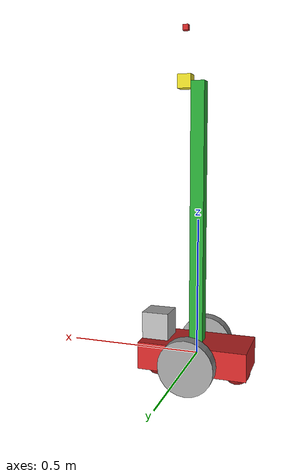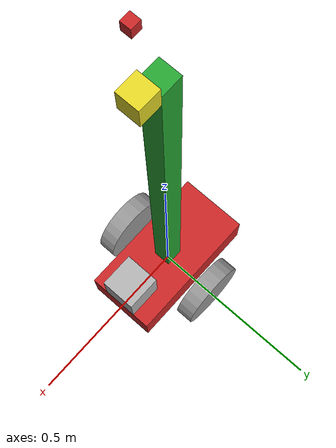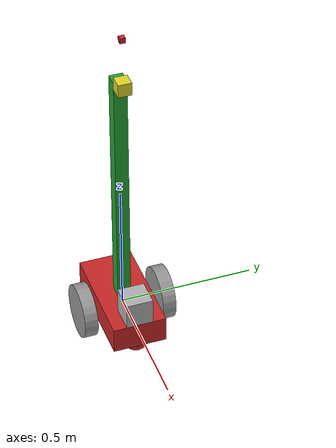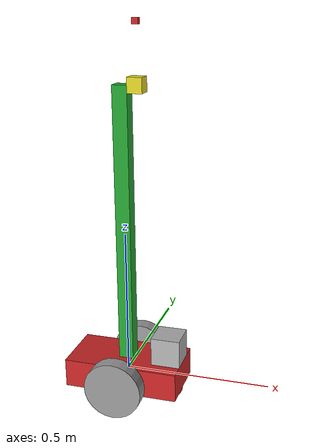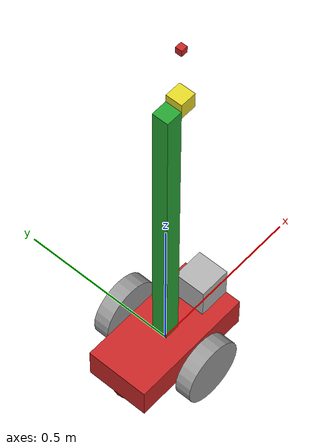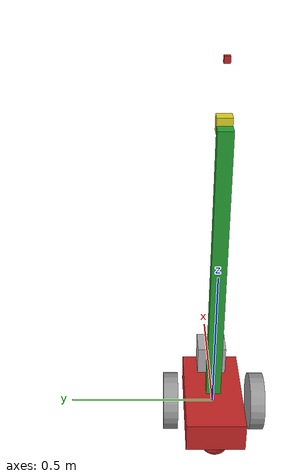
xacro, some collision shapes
<?xml version='1.0'?>

<robot name="my_robot" xmlns:xacro="http://www.ros.org/wiki/xacro">

  <xacro:include filename="$(find my_robot)/urdf/my_robot.gazebo" />
  <link name="robot_footprint"></link>

  <joint name="robot_footprint_joint" type="fixed">
    <origin xyz="0 0 0" rpy="0 0 0" />
    <parent link="robot_footprint"/>
    <child link="chassis" />

  </joint>

  <link name='chassis'>
    <pose>0 0 0.1 0 0 0</pose>

    <inertial>
      <mass value="15.0"/>
      <origin xyz="0.0 0 0" rpy=" 0 0 0"/>
      <inertia
          ixx="0.1" ixy="0" ixz="0"
          iyy="0.1" iyz="0"
          izz="0.1"
      />
    </inertial>

    <collision name='collision'>
      <origin xyz="0 0 0" rpy=" 0 0 0"/>
      <geometry>
        <box size=".4 .2 .1"/>
      </geometry>
    </collision>

    <visual name='chassis_visual'>
      <origin xyz="0 0 0" rpy=" 0 0 0"/>
      <geometry>
        <box size=".4 .2 .1"/>
      </geometry>
    </visual>

    <collision name='back_caster_collision'>
      <origin xyz="-0.15 0 -0.05" rpy=" 0 0 0"/>
      <geometry>
        <sphere radius="0.0499"/>
      </geometry>
    </collision>

    <visual name='back_caster_visual'>
      <origin xyz="-0.15 0 -0.05" rpy=" 0 0 0"/>
      <geometry>
        <sphere radius="0.05"/>
      </geometry>
    </visual>

    <collision name='front_caster_collision'>
      <origin xyz="0.15 0 -0.05" rpy=" 0 0 0"/>
      <geometry>
        <sphere radius="0.0499"/>
      </geometry>
    </collision>

    <visual name='front_caster_visual'>
      <origin xyz="0.15 0 -0.05" rpy=" 0 0 0"/>
      <geometry>
        <sphere radius="0.05"/>
      </geometry>
    </visual>

  </link>

  <!-- high_platform for camera -->
  <link name='high_platform'>
    <collision name='high_platform_collision'>
      <origin xyz="0 0 0" rpy="0 0 0"/>
      <geometry>
	<box size=".05 .05 1."/>
      </geometry>
    </collision>

    <visual name='high_platform_visual'>
      <origin xyz="0 0 0" rpy="0 0 0"/>
      <geometry>
	<box size=".05 .05 1."/>
      </geometry>
    </visual>

    <inertial>
      <mass value="0.01"/>
      <origin xyz="0 0 0" rpy="0 0 0"/>
      <inertia
          ixx="0.02" ixy="0" ixz="0"
          iyy="0.02" iyz="0"
          izz="0.02"
      />
    </inertial>
  </link>

 <joint name="base_to_high_platform" type="fixed">
     <parent link="chassis"/>
     <child link="high_platform"/>
     <origin xyz="0 0 0.5" />
 </joint>

  <!-- Left wheel -->
  <link name='left_wheel'>
    <collision name='left_wheel_collision'>
      <origin xyz="0 0 0" rpy="0 1.5707 1.5707"/>
      <geometry>
	<cylinder radius="0.1" length="0.05"/>
      </geometry>
    </collision>

    <visual name='left_wheel_visual'>
      <origin xyz="0 0 0" rpy="0 1.5707 1.5707"/>
      <geometry>
	<cylinder radius="0.1" length="0.05"/>
      </geometry>
    </visual>

    <inertial>
      <mass value="5"/>
      <origin xyz="0 0 0" rpy="0 1.5707 1.5707"/>
      <inertia
          ixx="0.1" ixy="0" ixz="0"
          iyy="0.1" iyz="0"
          izz="0.1"
      />
    </inertial>
  </link>

  <joint type="continuous" name="left_wheel_hinge">
    <origin xyz="0 0.15 0" rpy="0 0 0"/>
    <child link="left_wheel"/>
    <parent link="chassis"/>
    <axis xyz="0 1 0" rpy="0 0 0"/>
    <limit effort="10000" velocity="1000"/>
    <dynamics damping="1.0" friction="1.0"/>
  </joint>

  <!-- Right wheel -->
  <link name='right_wheel'>
    <collision name='right_wheel_collision'>
      <origin xyz="0 0 0" rpy="0 1.5707 1.5707"/>
      <geometry>
	<cylinder radius="0.1" length="0.05"/>
      </geometry>
    </collision>

    <visual name='right_wheel_visual'>
      <origin xyz="0 0 0" rpy="0 1.5707 1.5707"/>
      <geometry>
	<cylinder radius="0.1" length="0.05"/>
      </geometry>
    </visual>

    <inertial>
      <mass value="5"/>
      <origin xyz="0 0 0" rpy="0 1.5707 1.5707"/>
      <inertia
          ixx="0.1" ixy="0" ixz="0"
          iyy="0.1" iyz="0"
          izz="0.1"
      />
    </inertial>
  </link>

  <joint type="continuous" name="right_wheel_hinge">
    <origin xyz="0 -0.15 0" rpy="0 0 0"/>
    <child link="right_wheel"/>
    <parent link="chassis"/>
    <axis xyz="0 1 0" rpy="0 0 0"/>
    <limit effort="10000" velocity="1000"/>
    <dynamics damping="1.0" friction="1.0"/>
  </joint>

  <!-- camera -->
  <link name='camera'>
    <collision name='camera_collision'>
      <origin xyz="0 0 0" rpy="0 0 0"/>
      <geometry>
	<box size="0.05 0.05 0.05"/>
      </geometry>
    </collision>

    <visual name='camera_visual'>
      <origin xyz="0 0 0" rpy="0 0 0"/>
      <geometry>
	<box size="0.05 0.05 0.05"/>
      </geometry>
    </visual>

    <inertial>
      <mass value="0.01"/>
      <origin xyz="0 0 0" rpy="0 0 0"/>
      <inertia
          ixx="1e-6" ixy="0" ixz="0"
          iyy="1e-6" iyz="0"
          izz="1e-6"
      />
    </inertial>
  </link>

  <joint name="camera_joint" type="fixed">
    <origin xyz="0.05 0 0.5" rpy="0 0 0"/>
    <child link="camera"/>
    <parent link="high_platform"/>
    <axis xyz="0 1 0"/>
  </joint>

    <!-- RGBD camera -->
  <link name="camera_link_optical">
  </link>

  <joint name="camera_optical_joint" type="fixed">
    <origin xyz="0 0 0" rpy="-1.5707 0 -1.5707"/>
    <parent link="camera"/>
    <child link="camera_link_optical"/>
  </joint>

  <!-- hokuyo Lidar -->
  <link name='hokuyo'>
    <collision name="hokuyo_collision">
      <origin xyz="0 0 0" rpy="0 0 0"/>
      <geometry>
        <box size="0.1 0.1 0.1"/>
      </geometry>
    </collision>

    <visual name='hokuyo_visual'>
      <origin xyz="0 0 0" rpy="0 0 0"/>
      <geometry>
        <mesh filename="package://my_robot/meshes/hokuyo.dae"/>
      </geometry>
    </visual>

    <inertial>
      <mass value="1e-5"/>
      <origin xyz="0 0 0" rpy="0 0 0"/>
      <inertia
          ixx="1e-6" ixy="0" ixz="0"
          iyy="1e-6" iyz="0"
          izz="1e-6"
      />
    </inertial>
  </link>

  <joint type="fixed" name='hokuyo_joint'>
    <origin xyz="0.15 0 0.1" rpy="0 0 0"/>
    <child link="hokuyo"/>
    <parent link="chassis"/>
    <axis xyz="0 1 0"/>
  </joint>

  <joint name="imu_sensor_joint" type="fixed">
    <axis xyz="1 0 0"/>
    <origin xyz="0 0 0.19"/>
    <parent link="camera"/>
    <child link="imu_sensor_link"/>
  </joint>

    <link name="imu_sensor_link">
        <collision>
            <origin xyz="0 0 0" rpy="0 0 0"/>
            <geometry>
                <box size="0.02 0.02 0.02"/>
            </geometry>
        </collision>
        <visual>
            <origin xyz="0 0 0" rpy="0 0 0"/>
            <geometry>
                <box size="0.02 0.02 0.02"/>
            </geometry>
            <material name="iRobot/Red"/>
        </visual>
        <inertial>
            <mass value="0.001" />
            <origin xyz="0 0 0" rpy="0 0 0"/>
            <inertia ixx="0.00000015" ixy="0" ixz="0" iyy="0.00000015" iyz="0" izz="0.00000015" />
        </inertial>
    </link>

  <!-- Material -->
  <gazebo reference="left_wheel">
    <material>Gazebo/Grey</material>
  </gazebo>
  <gazebo reference="right_wheel">
    <material>Gazebo/Grey</material>
  </gazebo>
  <gazebo reference="chassis">
    <material>Gazebo/Red</material>
  </gazebo>
  <gazebo reference="camera">
    <material>Gazebo/DarkYellow</material>
  </gazebo>
  <gazebo reference="high_platform">
    <material>Gazebo/Green</material>
  </gazebo>

    <gazebo reference="imu_sensor_link">
      <gravity>true</gravity>
      <sensor name="$imu_sensor" type="imu">
        <always_on>true</always_on>
        <update_rate>1000</update_rate>
        <visualize>true</visualize>
        <topic>__default_topic__</topic>
        <plugin filename="libgazebo_ros_imu_sensor.so" name="imu_plugin">
          <topicName>imu_data</topicName>
          <bodyName>imu_sensor_link</bodyName>
          <updateRateHZ>10.0</updateRateHZ>
          <gaussianNoise>0.01</gaussianNoise>
          <xyzOffset>0 0 0</xyzOffset>
          <rpyOffset>0 0 0</rpyOffset>
          <frameName>imu_link</frameName>
        </plugin>
        <pose>0 0 0 0 0 0</pose>
      </sensor>
    </gazebo>

</robot>
